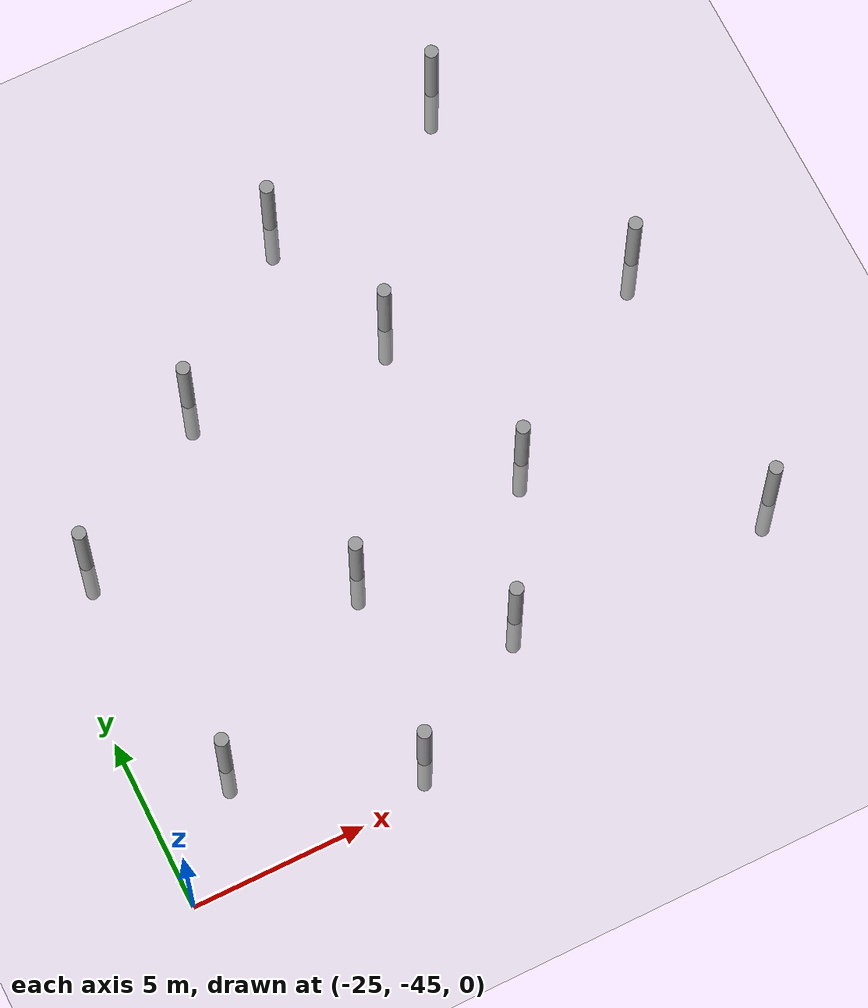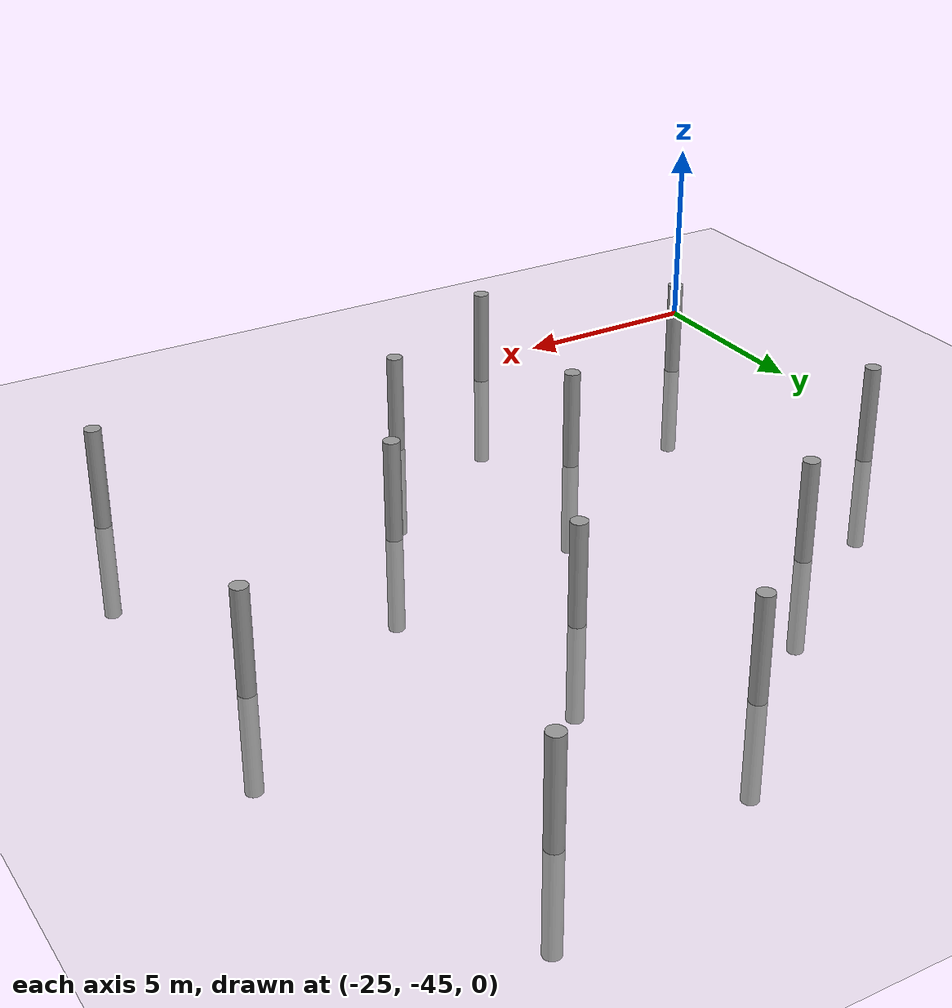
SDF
<sdf version="1.6">
 <world name="default">
  <model name="ground_plane">
   <static>1</static>
   <link name="link">
    <collision name="collision">
     <geometry><plane><normal>0 0 1</normal><size>100 100</size></plane></geometry>
     <surface><friction><ode><mu>100</mu><mu2>50</mu2></ode></friction></surface>
    </collision>
    <visual name="visual">
     <cast_shadows>0</cast_shadows>
     <geometry><plane><normal>0 0 1</normal><size>100 100</size></plane></geometry>
     <material>
      <script><uri>file://media/materials/scripts/gazebo.material</uri><name>Gazebo/Grey</name></script>
     </material>
    </visual>
   </link>
  </model>
  <model name="empty_pillars_8">
   <model name="empty_pillar_clone_0">
    <link name="link">
     <inertial>
      <mass>1</mass>
      <inertia><ixx>0.145833</ixx><ixy>0</ixy><ixz>0</ixz><iyy>0.145833</iyy><iyz>0</iyz><izz>0.125</izz></inertia>
     </inertial>
     <visual name="visual">
      <geometry><cylinder><radius>0.2</radius><length>5</length></cylinder></geometry>
      <material>
       <script><name>Gazebo/Grey</name><uri>file://media/materials/scripts/gazebo.material</uri></script>
       <shader type="vertex"><normal_map>__default__</normal_map></shader>
       <ambient>0.3 0.3 0.3 1</ambient>
       <diffuse>0.7 0.7 0.7 1</diffuse>
       <specular>0.01 0.01 0.01 1</specular>
       <emissive>0 0 0 1</emissive>
      </material>
     </visual>
     <collision name="collision">
      <geometry><cylinder><radius>0.05</radius><length>5</length></cylinder></geometry>
      <surface>
       <friction>
        <ode><mu>1</mu><mu2>1</mu2><fdir1>0 0 0</fdir1><slip1>0</slip1><slip2>0</slip2></ode>
        <torsional>
         <coefficient>1</coefficient>
         <patch_radius>0</patch_radius>
         <surface_radius>0</surface_radius>
         <use_patch_radius>1</use_patch_radius>
         <ode><slip>0</slip></ode>
        </torsional>
       </friction>
       <bounce><restitution_coefficient>0</restitution_coefficient><threshold>1e+06</threshold></bounce>
       <contact>
        <collide_without_contact>0</collide_without_contact>
        <collide_without_contact_bitmask>1</collide_without_contact_bitmask>
        <collide_bitmask>1</collide_bitmask>
        <ode>
         <soft_cfm>0</soft_cfm>
         <soft_erp>0.2</soft_erp>
         <kp>1e+13</kp>
         <kd>1</kd>
         <max_vel>0.01</max_vel>
         <min_depth>0</min_depth>
        </ode>
        <bullet>
         <split_impulse>1</split_impulse>
         <split_impulse_penetration_threshold>-0.01</split_impulse_penetration_threshold>
         <soft_cfm>0</soft_cfm>
         <soft_erp>0.2</soft_erp>
         <kp>1e+13</kp>
         <kd>1</kd>
        </bullet>
       </contact>
      </surface>
     </collision>
    </link>
    <static>0</static>
    <pose>10.3453 -7.35986 0 0 -0 0</pose>
   </model>
   <model name="empty_pillar_clone_10">
    <link name="link">
     <inertial>
      <mass>1</mass>
      <inertia><ixx>0.145833</ixx><ixy>0</ixy><ixz>0</ixz><iyy>0.145833</iyy><iyz>0</iyz><izz>0.125</izz></inertia>
     </inertial>
     <visual name="visual">
      <geometry><cylinder><radius>0.2</radius><length>5</length></cylinder></geometry>
      <material>
       <script><name>Gazebo/Grey</name><uri>file://media/materials/scripts/gazebo.material</uri></script>
       <shader type="vertex"><normal_map>__default__</normal_map></shader>
       <ambient>0.3 0.3 0.3 1</ambient>
       <diffuse>0.7 0.7 0.7 1</diffuse>
       <specular>0.01 0.01 0.01 1</specular>
       <emissive>0 0 0 1</emissive>
      </material>
     </visual>
     <collision name="collision">
      <geometry><cylinder><radius>0.05</radius><length>5</length></cylinder></geometry>
      <surface>
       <friction>
        <ode><mu>1</mu><mu2>1</mu2><fdir1>0 0 0</fdir1><slip1>0</slip1><slip2>0</slip2></ode>
        <torsional>
         <coefficient>1</coefficient>
         <patch_radius>0</patch_radius>
         <surface_radius>0</surface_radius>
         <use_patch_radius>1</use_patch_radius>
         <ode><slip>0</slip></ode>
        </torsional>
       </friction>
       <bounce><restitution_coefficient>0</restitution_coefficient><threshold>1e+06</threshold></bounce>
       <contact>
        <collide_without_contact>0</collide_without_contact>
        <collide_without_contact_bitmask>1</collide_without_contact_bitmask>
        <collide_bitmask>1</collide_bitmask>
        <ode>
         <soft_cfm>0</soft_cfm>
         <soft_erp>0.2</soft_erp>
         <kp>1e+13</kp>
         <kd>1</kd>
         <max_vel>0.01</max_vel>
         <min_depth>0</min_depth>
        </ode>
        <bullet>
         <split_impulse>1</split_impulse>
         <split_impulse_penetration_threshold>-0.01</split_impulse_penetration_threshold>
         <soft_cfm>0</soft_cfm>
         <soft_erp>0.2</soft_erp>
         <kp>1e+13</kp>
         <kd>1</kd>
        </bullet>
       </contact>
      </surface>
     </collision>
    </link>
    <static>0</static>
    <pose>13.5083 -16.8403 0 0 -0 0</pose>
   </model>
   <model name="empty_pillar_clone_11">
    <link name="link">
     <inertial>
      <mass>1</mass>
      <inertia><ixx>0.145833</ixx><ixy>0</ixy><ixz>0</ixz><iyy>0.145833</iyy><iyz>0</iyz><izz>0.125</izz></inertia>
     </inertial>
     <visual name="visual">
      <geometry><cylinder><radius>0.2</radius><length>5</length></cylinder></geometry>
      <material>
       <script><name>Gazebo/Grey</name><uri>file://media/materials/scripts/gazebo.material</uri></script>
       <shader type="vertex"><normal_map>__default__</normal_map></shader>
       <ambient>0.3 0.3 0.3 1</ambient>
       <diffuse>0.7 0.7 0.7 1</diffuse>
       <specular>0.01 0.01 0.01 1</specular>
       <emissive>0 0 0 1</emissive>
      </material>
     </visual>
     <collision name="collision">
      <geometry><cylinder><radius>0.05</radius><length>5</length></cylinder></geometry>
      <surface>
       <friction>
        <ode><mu>1</mu><mu2>1</mu2><fdir1>0 0 0</fdir1><slip1>0</slip1><slip2>0</slip2></ode>
        <torsional>
         <coefficient>1</coefficient>
         <patch_radius>0</patch_radius>
         <surface_radius>0</surface_radius>
         <use_patch_radius>1</use_patch_radius>
         <ode><slip>0</slip></ode>
        </torsional>
       </friction>
       <bounce><restitution_coefficient>0</restitution_coefficient><threshold>1e+06</threshold></bounce>
       <contact>
        <collide_without_contact>0</collide_without_contact>
        <collide_without_contact_bitmask>1</collide_without_contact_bitmask>
        <collide_bitmask>1</collide_bitmask>
        <ode>
         <soft_cfm>0</soft_cfm>
         <soft_erp>0.2</soft_erp>
         <kp>1e+13</kp>
         <kd>1</kd>
         <max_vel>0.01</max_vel>
         <min_depth>0</min_depth>
        </ode>
        <bullet>
         <split_impulse>1</split_impulse>
         <split_impulse_penetration_threshold>-0.01</split_impulse_penetration_threshold>
         <soft_cfm>0</soft_cfm>
         <soft_erp>0.2</soft_erp>
         <kp>1e+13</kp>
         <kd>1</kd>
        </bullet>
       </contact>
      </surface>
     </collision>
    </link>
    <static>0</static>
    <pose>7.98536 -17.8403 0 0 -0 0</pose>
   </model>
   <model name="empty_pillar_clone_3">
    <link name="link">
     <inertial>
      <mass>1</mass>
      <inertia><ixx>0.145833</ixx><ixy>0</ixy><ixz>0</ixz><iyy>0.145833</iyy><iyz>0</iyz><izz>0.125</izz></inertia>
     </inertial>
     <visual name="visual">
      <geometry><cylinder><radius>0.2</radius><length>5</length></cylinder></geometry>
      <material>
       <script><name>Gazebo/Grey</name><uri>file://media/materials/scripts/gazebo.material</uri></script>
       <shader type="vertex"><normal_map>__default__</normal_map></shader>
       <ambient>0.3 0.3 0.3 1</ambient>
       <diffuse>0.7 0.7 0.7 1</diffuse>
       <specular>0.01 0.01 0.01 1</specular>
       <emissive>0 0 0 1</emissive>
      </material>
     </visual>
     <collision name="collision">
      <geometry><cylinder><radius>0.05</radius><length>5</length></cylinder></geometry>
      <surface>
       <friction>
        <ode><mu>1</mu><mu2>1</mu2><fdir1>0 0 0</fdir1><slip1>0</slip1><slip2>0</slip2></ode>
        <torsional>
         <coefficient>1</coefficient>
         <patch_radius>0</patch_radius>
         <surface_radius>0</surface_radius>
         <use_patch_radius>1</use_patch_radius>
         <ode><slip>0</slip></ode>
        </torsional>
       </friction>
       <bounce><restitution_coefficient>0</restitution_coefficient><threshold>1e+06</threshold></bounce>
       <contact>
        <collide_without_contact>0</collide_without_contact>
        <collide_without_contact_bitmask>1</collide_without_contact_bitmask>
        <collide_bitmask>1</collide_bitmask>
        <ode>
         <soft_cfm>0</soft_cfm>
         <soft_erp>0.2</soft_erp>
         <kp>1e+13</kp>
         <kd>1</kd>
         <max_vel>0.01</max_vel>
         <min_depth>0</min_depth>
        </ode>
        <bullet>
         <split_impulse>1</split_impulse>
         <split_impulse_penetration_threshold>-0.01</split_impulse_penetration_threshold>
         <soft_cfm>0</soft_cfm>
         <soft_erp>0.2</soft_erp>
         <kp>1e+13</kp>
         <kd>1</kd>
        </bullet>
       </contact>
      </surface>
     </collision>
    </link>
    <static>0</static>
    <pose>5.99316 -11.2211 0 0 -0 0</pose>
   </model>
   <model name="empty_pillar_clone_34">
    <link name="link">
     <inertial>
      <mass>1</mass>
      <inertia><ixx>0.145833</ixx><ixy>0</ixy><ixz>0</ixz><iyy>0.145833</iyy><iyz>0</iyz><izz>0.125</izz></inertia>
     </inertial>
     <visual name="visual">
      <geometry><cylinder><radius>0.2</radius><length>5</length></cylinder></geometry>
      <material>
       <script><name>Gazebo/Grey</name><uri>file://media/materials/scripts/gazebo.material</uri></script>
       <shader type="vertex"><normal_map>__default__</normal_map></shader>
       <ambient>0.3 0.3 0.3 1</ambient>
       <diffuse>0.7 0.7 0.7 1</diffuse>
       <specular>0.01 0.01 0.01 1</specular>
       <emissive>0 0 0 1</emissive>
      </material>
     </visual>
     <collision name="collision">
      <geometry><cylinder><radius>0.05</radius><length>5</length></cylinder></geometry>
      <surface>
       <friction>
        <ode><mu>1</mu><mu2>1</mu2><fdir1>0 0 0</fdir1><slip1>0</slip1><slip2>0</slip2></ode>
        <torsional>
         <coefficient>1</coefficient>
         <patch_radius>0</patch_radius>
         <surface_radius>0</surface_radius>
         <use_patch_radius>1</use_patch_radius>
         <ode><slip>0</slip></ode>
        </torsional>
       </friction>
       <bounce><restitution_coefficient>0</restitution_coefficient><threshold>1e+06</threshold></bounce>
       <contact>
        <collide_without_contact>0</collide_without_contact>
        <collide_without_contact_bitmask>1</collide_without_contact_bitmask>
        <collide_bitmask>1</collide_bitmask>
        <ode>
         <soft_cfm>0</soft_cfm>
         <soft_erp>0.2</soft_erp>
         <kp>1e+13</kp>
         <kd>1</kd>
         <max_vel>0.01</max_vel>
         <min_depth>0</min_depth>
        </ode>
        <bullet>
         <split_impulse>1</split_impulse>
         <split_impulse_penetration_threshold>-0.01</split_impulse_penetration_threshold>
         <soft_cfm>0</soft_cfm>
         <soft_erp>0.2</soft_erp>
         <kp>1e+13</kp>
         <kd>1</kd>
        </bullet>
       </contact>
      </surface>
     </collision>
    </link>
    <static>0</static>
    <pose>19.0861 -20.8946 0 0 -0 0</pose>
   </model>
   <model name="empty_pillar_clone_4">
    <link name="link">
     <inertial>
      <mass>1</mass>
      <inertia><ixx>0.145833</ixx><ixy>0</ixy><ixz>0</ixz><iyy>0.145833</iyy><iyz>0</iyz><izz>0.125</izz></inertia>
     </inertial>
     <visual name="visual">
      <geometry><cylinder><radius>0.2</radius><length>5</length></cylinder></geometry>
      <material>
       <script><name>Gazebo/Grey</name><uri>file://media/materials/scripts/gazebo.material</uri></script>
       <shader type="vertex"><normal_map>__default__</normal_map></shader>
       <ambient>0.3 0.3 0.3 1</ambient>
       <diffuse>0.7 0.7 0.7 1</diffuse>
       <specular>0.01 0.01 0.01 1</specular>
       <emissive>0 0 0 1</emissive>
      </material>
     </visual>
     <collision name="collision">
      <geometry><cylinder><radius>0.05</radius><length>5</length></cylinder></geometry>
      <surface>
       <friction>
        <ode><mu>1</mu><mu2>1</mu2><fdir1>0 0 0</fdir1><slip1>0</slip1><slip2>0</slip2></ode>
        <torsional>
         <coefficient>1</coefficient>
         <patch_radius>0</patch_radius>
         <surface_radius>0</surface_radius>
         <use_patch_radius>1</use_patch_radius>
         <ode><slip>0</slip></ode>
        </torsional>
       </friction>
       <bounce><restitution_coefficient>0</restitution_coefficient><threshold>1e+06</threshold></bounce>
       <contact>
        <collide_without_contact>0</collide_without_contact>
        <collide_without_contact_bitmask>1</collide_without_contact_bitmask>
        <collide_bitmask>1</collide_bitmask>
        <ode>
         <soft_cfm>0</soft_cfm>
         <soft_erp>0.2</soft_erp>
         <kp>1e+13</kp>
         <kd>1</kd>
         <max_vel>0.01</max_vel>
         <min_depth>0</min_depth>
        </ode>
        <bullet>
         <split_impulse>1</split_impulse>
         <split_impulse_penetration_threshold>-0.01</split_impulse_penetration_threshold>
         <soft_cfm>0</soft_cfm>
         <soft_erp>0.2</soft_erp>
         <kp>1e+13</kp>
         <kd>1</kd>
        </bullet>
       </contact>
      </surface>
     </collision>
    </link>
    <static>0</static>
    <pose>1.48428 -14.2998 0 0 -0 0</pose>
   </model>
   <model name="empty_pillar_clone_46">
    <link name="link">
     <inertial>
      <mass>1</mass>
      <inertia><ixx>0.145833</ixx><ixy>0</ixy><ixz>0</ixz><iyy>0.145833</iyy><iyz>0</iyz><izz>0.125</izz></inertia>
     </inertial>
     <visual name="visual">
      <geometry><cylinder><radius>0.2</radius><length>5</length></cylinder></geometry>
      <material>
       <script><name>Gazebo/Grey</name><uri>file://media/materials/scripts/gazebo.material</uri></script>
       <shader type="vertex"><normal_map>__default__</normal_map></shader>
       <ambient>0.3 0.3 0.3 1</ambient>
       <diffuse>0.7 0.7 0.7 1</diffuse>
       <specular>0.01 0.01 0.01 1</specular>
       <emissive>0 0 0 1</emissive>
      </material>
     </visual>
     <collision name="collision">
      <geometry><cylinder><radius>0.05</radius><length>5</length></cylinder></geometry>
      <surface>
       <friction>
        <ode><mu>1</mu><mu2>1</mu2><fdir1>0 0 0</fdir1><slip1>0</slip1><slip2>0</slip2></ode>
        <torsional>
         <coefficient>1</coefficient>
         <patch_radius>0</patch_radius>
         <surface_radius>0</surface_radius>
         <use_patch_radius>1</use_patch_radius>
         <ode><slip>0</slip></ode>
        </torsional>
       </friction>
       <bounce><restitution_coefficient>0</restitution_coefficient><threshold>1e+06</threshold></bounce>
       <contact>
        <collide_without_contact>0</collide_without_contact>
        <collide_without_contact_bitmask>1</collide_without_contact_bitmask>
        <collide_bitmask>1</collide_bitmask>
        <ode>
         <soft_cfm>0</soft_cfm>
         <soft_erp>0.2</soft_erp>
         <kp>1e+13</kp>
         <kd>1</kd>
         <max_vel>0.01</max_vel>
         <min_depth>0</min_depth>
        </ode>
        <bullet>
         <split_impulse>1</split_impulse>
         <split_impulse_penetration_threshold>-0.01</split_impulse_penetration_threshold>
         <soft_cfm>0</soft_cfm>
         <soft_erp>0.2</soft_erp>
         <kp>1e+13</kp>
         <kd>1</kd>
        </bullet>
       </contact>
      </surface>
     </collision>
    </link>
    <static>0</static>
    <pose>2.45033 -21.185 0 0 -0 0</pose>
   </model>
   <model name="empty_pillar_clone_48">
    <link name="link">
     <inertial>
      <mass>1</mass>
      <inertia><ixx>0.145833</ixx><ixy>0</ixy><ixz>0</ixz><iyy>0.145833</iyy><iyz>0</iyz><izz>0.125</izz></inertia>
     </inertial>
     <visual name="visual">
      <geometry><cylinder><radius>0.2</radius><length>5</length></cylinder></geometry>
      <material>
       <script><name>Gazebo/Grey</name><uri>file://media/materials/scripts/gazebo.material</uri></script>
       <shader type="vertex"><normal_map>__default__</normal_map></shader>
       <ambient>0.3 0.3 0.3 1</ambient>
       <diffuse>0.7 0.7 0.7 1</diffuse>
       <specular>0.01 0.01 0.01 1</specular>
       <emissive>0 0 0 1</emissive>
      </material>
     </visual>
     <collision name="collision">
      <geometry><cylinder><radius>0.05</radius><length>5</length></cylinder></geometry>
      <surface>
       <friction>
        <ode><mu>1</mu><mu2>1</mu2><fdir1>0 0 0</fdir1><slip1>0</slip1><slip2>0</slip2></ode>
        <torsional>
         <coefficient>1</coefficient>
         <patch_radius>0</patch_radius>
         <surface_radius>0</surface_radius>
         <use_patch_radius>1</use_patch_radius>
         <ode><slip>0</slip></ode>
        </torsional>
       </friction>
       <bounce><restitution_coefficient>0</restitution_coefficient><threshold>1e+06</threshold></bounce>
       <contact>
        <collide_without_contact>0</collide_without_contact>
        <collide_without_contact_bitmask>1</collide_without_contact_bitmask>
        <collide_bitmask>1</collide_bitmask>
        <ode>
         <soft_cfm>0</soft_cfm>
         <soft_erp>0.2</soft_erp>
         <kp>1e+13</kp>
         <kd>1</kd>
         <max_vel>0.01</max_vel>
         <min_depth>0</min_depth>
        </ode>
        <bullet>
         <split_impulse>1</split_impulse>
         <split_impulse_penetration_threshold>-0.01</split_impulse_penetration_threshold>
         <soft_cfm>0</soft_cfm>
         <soft_erp>0.2</soft_erp>
         <kp>1e+13</kp>
         <kd>1</kd>
        </bullet>
       </contact>
      </surface>
     </collision>
    </link>
    <static>0</static>
    <pose>16.2633 -5.65052 0 0 -0 0</pose>
   </model>
   <model name="empty_pillar_clone_51">
    <link name="link">
     <inertial>
      <mass>1</mass>
      <inertia><ixx>0.145833</ixx><ixy>0</ixy><ixz>0</ixz><iyy>0.145833</iyy><iyz>0</iyz><izz>0.125</izz></inertia>
     </inertial>
     <visual name="visual">
      <geometry><cylinder><radius>0.2</radius><length>5</length></cylinder></geometry>
      <material>
       <script><name>Gazebo/Grey</name><uri>file://media/materials/scripts/gazebo.material</uri></script>
       <shader type="vertex"><normal_map>__default__</normal_map></shader>
       <ambient>0.3 0.3 0.3 1</ambient>
       <diffuse>0.7 0.7 0.7 1</diffuse>
       <specular>0.01 0.01 0.01 1</specular>
       <emissive>0 0 0 1</emissive>
      </material>
     </visual>
     <collision name="collision">
      <geometry><cylinder><radius>0.05</radius><length>5</length></cylinder></geometry>
      <surface>
       <friction>
        <ode><mu>1</mu><mu2>1</mu2><fdir1>0 0 0</fdir1><slip1>0</slip1><slip2>0</slip2></ode>
        <torsional>
         <coefficient>1</coefficient>
         <patch_radius>0</patch_radius>
         <surface_radius>0</surface_radius>
         <use_patch_radius>1</use_patch_radius>
         <ode><slip>0</slip></ode>
        </torsional>
       </friction>
       <bounce><restitution_coefficient>0</restitution_coefficient><threshold>1e+06</threshold></bounce>
       <contact>
        <collide_without_contact>0</collide_without_contact>
        <collide_without_contact_bitmask>1</collide_without_contact_bitmask>
        <collide_bitmask>1</collide_bitmask>
        <ode>
         <soft_cfm>0</soft_cfm>
         <soft_erp>0.2</soft_erp>
         <kp>1e+13</kp>
         <kd>1</kd>
         <max_vel>0.01</max_vel>
         <min_depth>0</min_depth>
        </ode>
        <bullet>
         <split_impulse>1</split_impulse>
         <split_impulse_penetration_threshold>-0.01</split_impulse_penetration_threshold>
         <soft_cfm>0</soft_cfm>
         <soft_erp>0.2</soft_erp>
         <kp>1e+13</kp>
         <kd>1</kd>
        </bullet>
       </contact>
      </surface>
     </collision>
    </link>
    <static>0</static>
    <pose>11.8943 -11.5792 0 0 -0 0</pose>
   </model>
   <model name="empty_pillar_clone_52">
    <link name="link">
     <inertial>
      <mass>1</mass>
      <inertia><ixx>0.145833</ixx><ixy>0</ixy><ixz>0</ixz><iyy>0.145833</iyy><iyz>0</iyz><izz>0.125</izz></inertia>
     </inertial>
     <visual name="visual">
      <geometry><cylinder><radius>0.2</radius><length>5</length></cylinder></geometry>
      <material>
       <script><name>Gazebo/Grey</name><uri>file://media/materials/scripts/gazebo.material</uri></script>
       <shader type="vertex"><normal_map>__default__</normal_map></shader>
       <ambient>0.3 0.3 0.3 1</ambient>
       <diffuse>0.7 0.7 0.7 1</diffuse>
       <specular>0.01 0.01 0.01 1</specular>
       <emissive>0 0 0 1</emissive>
      </material>
     </visual>
     <collision name="collision">
      <geometry><cylinder><radius>0.05</radius><length>5</length></cylinder></geometry>
      <surface>
       <friction>
        <ode><mu>1</mu><mu2>1</mu2><fdir1>0 0 0</fdir1><slip1>0</slip1><slip2>0</slip2></ode>
        <torsional>
         <coefficient>1</coefficient>
         <patch_radius>0</patch_radius>
         <surface_radius>0</surface_radius>
         <use_patch_radius>1</use_patch_radius>
         <ode><slip>0</slip></ode>
        </torsional>
       </friction>
       <bounce><restitution_coefficient>0</restitution_coefficient><threshold>1e+06</threshold></bounce>
       <contact>
        <collide_without_contact>0</collide_without_contact>
        <collide_without_contact_bitmask>1</collide_without_contact_bitmask>
        <collide_bitmask>1</collide_bitmask>
        <ode>
         <soft_cfm>0</soft_cfm>
         <soft_erp>0.2</soft_erp>
         <kp>1e+13</kp>
         <kd>1</kd>
         <max_vel>0.01</max_vel>
         <min_depth>0</min_depth>
        </ode>
        <bullet>
         <split_impulse>1</split_impulse>
         <split_impulse_penetration_threshold>-0.01</split_impulse_penetration_threshold>
         <soft_cfm>0</soft_cfm>
         <soft_erp>0.2</soft_erp>
         <kp>1e+13</kp>
         <kd>1</kd>
        </bullet>
       </contact>
      </surface>
     </collision>
    </link>
    <static>0</static>
    <pose>11.2833 -20.8743 0 0 -0 0</pose>
   </model>
   <model name="empty_pillar_clone_53">
    <link name="link">
     <inertial>
      <mass>1</mass>
      <inertia><ixx>0.145833</ixx><ixy>0</ixy><ixz>0</ixz><iyy>0.145833</iyy><iyz>0</iyz><izz>0.125</izz></inertia>
     </inertial>
     <visual name="visual">
      <geometry><cylinder><radius>0.2</radius><length>5</length></cylinder></geometry>
      <material>
       <script><name>Gazebo/Grey</name><uri>file://media/materials/scripts/gazebo.material</uri></script>
       <shader type="vertex"><normal_map>__default__</normal_map></shader>
       <ambient>0.3 0.3 0.3 1</ambient>
       <diffuse>0.7 0.7 0.7 1</diffuse>
       <specular>0.01 0.01 0.01 1</specular>
       <emissive>0 0 0 1</emissive>
      </material>
     </visual>
     <collision name="collision">
      <geometry><cylinder><radius>0.05</radius><length>5</length></cylinder></geometry>
      <surface>
       <friction>
        <ode><mu>1</mu><mu2>1</mu2><fdir1>0 0 0</fdir1><slip1>0</slip1><slip2>0</slip2></ode>
        <torsional>
         <coefficient>1</coefficient>
         <patch_radius>0</patch_radius>
         <surface_radius>0</surface_radius>
         <use_patch_radius>1</use_patch_radius>
         <ode><slip>0</slip></ode>
        </torsional>
       </friction>
       <bounce><restitution_coefficient>0</restitution_coefficient><threshold>1e+06</threshold></bounce>
       <contact>
        <collide_without_contact>0</collide_without_contact>
        <collide_without_contact_bitmask>1</collide_without_contact_bitmask>
        <collide_bitmask>1</collide_bitmask>
        <ode>
         <soft_cfm>0</soft_cfm>
         <soft_erp>0.2</soft_erp>
         <kp>1e+13</kp>
         <kd>1</kd>
         <max_vel>0.01</max_vel>
         <min_depth>0</min_depth>
        </ode>
        <bullet>
         <split_impulse>1</split_impulse>
         <split_impulse_penetration_threshold>-0.01</split_impulse_penetration_threshold>
         <soft_cfm>0</soft_cfm>
         <soft_erp>0.2</soft_erp>
         <kp>1e+13</kp>
         <kd>1</kd>
        </bullet>
       </contact>
      </surface>
     </collision>
    </link>
    <static>0</static>
    <pose>7.32522 -23.3523 0 0 -0 0</pose>
   </model>
   <model name="empty_pillar_clone_8">
    <link name="link">
     <inertial>
      <mass>1</mass>
      <inertia><ixx>0.145833</ixx><ixy>0</ixy><ixz>0</ixz><iyy>0.145833</iyy><iyz>0</iyz><izz>0.125</izz></inertia>
     </inertial>
     <visual name="visual">
      <geometry><cylinder><radius>0.2</radius><length>5</length></cylinder></geometry>
      <material>
       <script><name>Gazebo/Grey</name><uri>file://media/materials/scripts/gazebo.material</uri></script>
       <shader type="vertex"><normal_map>__default__</normal_map></shader>
       <ambient>0.3 0.3 0.3 1</ambient>
       <diffuse>0.7 0.7 0.7 1</diffuse>
       <specular>0.01 0.01 0.01 1</specular>
       <emissive>0 0 0 1</emissive>
      </material>
     </visual>
     <collision name="collision">
      <geometry><cylinder><radius>0.05</radius><length>5</length></cylinder></geometry>
      <surface>
       <friction>
        <ode><mu>1</mu><mu2>1</mu2><fdir1>0 0 0</fdir1><slip1>0</slip1><slip2>0</slip2></ode>
        <torsional>
         <coefficient>1</coefficient>
         <patch_radius>0</patch_radius>
         <surface_radius>0</surface_radius>
         <use_patch_radius>1</use_patch_radius>
         <ode><slip>0</slip></ode>
        </torsional>
       </friction>
       <bounce><restitution_coefficient>0</restitution_coefficient><threshold>1e+06</threshold></bounce>
       <contact>
        <collide_without_contact>0</collide_without_contact>
        <collide_without_contact_bitmask>1</collide_without_contact_bitmask>
        <collide_bitmask>1</collide_bitmask>
        <ode>
         <soft_cfm>0</soft_cfm>
         <soft_erp>0.2</soft_erp>
         <kp>1e+13</kp>
         <kd>1</kd>
         <max_vel>0.01</max_vel>
         <min_depth>0</min_depth>
        </ode>
        <bullet>
         <split_impulse>1</split_impulse>
         <split_impulse_penetration_threshold>-0.01</split_impulse_penetration_threshold>
         <soft_cfm>0</soft_cfm>
         <soft_erp>0.2</soft_erp>
         <kp>1e+13</kp>
         <kd>1</kd>
        </bullet>
       </contact>
      </surface>
     </collision>
    </link>
    <static>0</static>
    <pose>18.9854 -12.8403 0 0 -0 0</pose>
   </model>
   <static>0</static>
   <pose>-25.0415 -20.6705 0 0 -0 0</pose>
  </model>
 </world>
</sdf>
